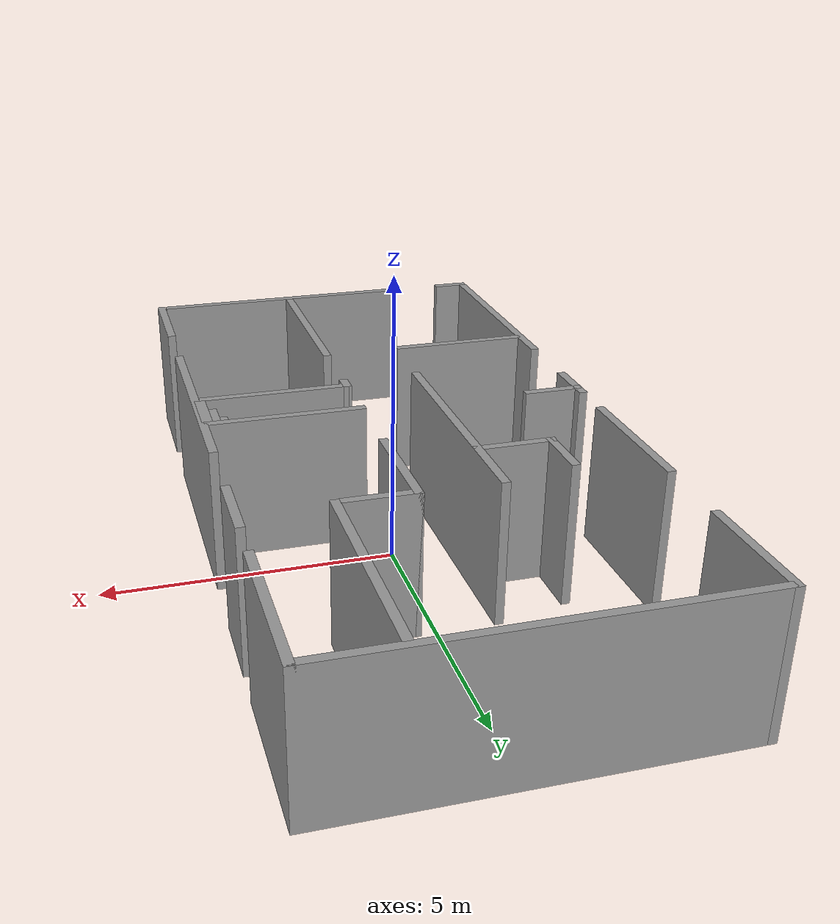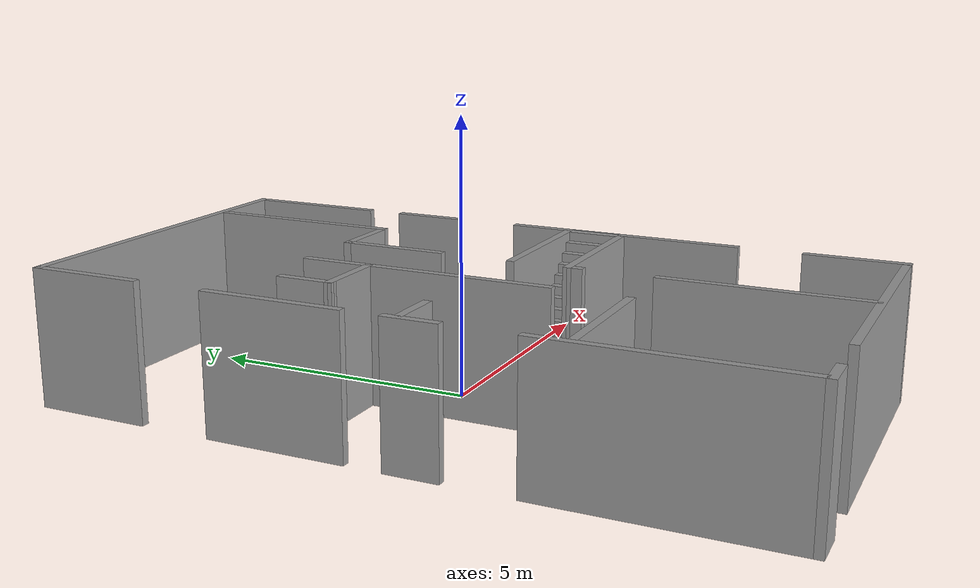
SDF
<?xml version='1.0'?>
<sdf version='1.7'>
<!--Walls and world model-->
  <model name='roboconvoy_3d_world'>
    <pose>-0.279316 -0.400822 0 0 -0 0</pose>
    <link name='Stairs_0'>
      <visual name='Stairs_0_Visual_0'>
        <pose>0.656384 -0.935334 0.083333 0 -0 1.5708</pose>
        <geometry>
          <box>
            <size>0.919916 0.183413 0.166667</size>
          </box>
        </geometry>
        <material>
          <script>
            <uri>file://media/materials/scripts/gazebo.material</uri>
            <name>Gazebo/Grey</name>
          </script>
          <ambient>1 1 1 1</ambient>
        </material>
        <meta>
          <layer>0</layer>
        </meta>
      </visual>
      <collision name='Stairs_0_Collision_0'>
        <geometry>
          <box>
            <size>0.919916 0.183413 0.166667</size>
          </box>
        </geometry>
        <pose>0.656384 -0.935334 0.083333 0 -0 1.5708</pose>
      </collision>
      <visual name='Stairs_0_Visual_1'>
        <pose>0.839797 -0.935334 0.25 0 -0 1.5708</pose>
        <geometry>
          <box>
            <size>0.919916 0.183413 0.166667</size>
          </box>
        </geometry>
        <material>
          <script>
            <uri>file://media/materials/scripts/gazebo.material</uri>
            <name>Gazebo/Grey</name>
          </script>
          <ambient>1 1 1 1</ambient>
        </material>
        <meta>
          <layer>0</layer>
        </meta>
      </visual>
      <collision name='Stairs_0_Collision_1'>
        <geometry>
          <box>
            <size>0.919916 0.183413 0.166667</size>
          </box>
        </geometry>
        <pose>0.839797 -0.935334 0.25 0 -0 1.5708</pose>
      </collision>
      <visual name='Stairs_0_Visual_2'>
        <pose>1.02321 -0.935334 0.416667 0 -0 1.5708</pose>
        <geometry>
          <box>
            <size>0.919916 0.183413 0.166667</size>
          </box>
        </geometry>
        <material>
          <script>
            <uri>file://media/materials/scripts/gazebo.material</uri>
            <name>Gazebo/Grey</name>
          </script>
          <ambient>1 1 1 1</ambient>
        </material>
        <meta>
          <layer>0</layer>
        </meta>
      </visual>
      <collision name='Stairs_0_Collision_2'>
        <geometry>
          <box>
            <size>0.919916 0.183413 0.166667</size>
          </box>
        </geometry>
        <pose>1.02321 -0.935334 0.416667 0 -0 1.5708</pose>
      </collision>
      <visual name='Stairs_0_Visual_3'>
        <pose>1.20662 -0.935334 0.583333 0 -0 1.5708</pose>
        <geometry>
          <box>
            <size>0.919916 0.183413 0.166667</size>
          </box>
        </geometry>
        <material>
          <script>
            <uri>file://media/materials/scripts/gazebo.material</uri>
            <name>Gazebo/Grey</name>
          </script>
          <ambient>1 1 1 1</ambient>
        </material>
        <meta>
          <layer>0</layer>
        </meta>
      </visual>
      <collision name='Stairs_0_Collision_3'>
        <geometry>
          <box>
            <size>0.919916 0.183413 0.166667</size>
          </box>
        </geometry>
        <pose>1.20662 -0.935334 0.583333 0 -0 1.5708</pose>
      </collision>
      <visual name='Stairs_0_Visual_4'>
        <pose>1.39004 -0.935334 0.75 0 -0 1.5708</pose>
        <geometry>
          <box>
            <size>0.919916 0.183413 0.166667</size>
          </box>
        </geometry>
        <material>
          <script>
            <uri>file://media/materials/scripts/gazebo.material</uri>
            <name>Gazebo/Grey</name>
          </script>
          <ambient>1 1 1 1</ambient>
        </material>
        <meta>
          <layer>0</layer>
        </meta>
      </visual>
      <collision name='Stairs_0_Collision_4'>
        <geometry>
          <box>
            <size>0.919916 0.183413 0.166667</size>
          </box>
        </geometry>
        <pose>1.39004 -0.935334 0.75 0 -0 1.5708</pose>
      </collision>
      <visual name='Stairs_0_Visual_5'>
        <pose>1.57345 -0.935334 0.916667 0 -0 1.5708</pose>
        <geometry>
          <box>
            <size>0.919916 0.183413 0.166667</size>
          </box>
        </geometry>
        <material>
          <script>
            <uri>file://media/materials/scripts/gazebo.material</uri>
            <name>Gazebo/Grey</name>
          </script>
          <ambient>1 1 1 1</ambient>
        </material>
        <meta>
          <layer>0</layer>
        </meta>
      </visual>
      <collision name='Stairs_0_Collision_5'>
        <geometry>
          <box>
            <size>0.919916 0.183413 0.166667</size>
          </box>
        </geometry>
        <pose>1.57345 -0.935334 0.916667 0 -0 1.5708</pose>
      </collision>
      <visual name='Stairs_0_Visual_6'>
        <pose>1.75686 -0.935334 1.08333 0 -0 1.5708</pose>
        <geometry>
          <box>
            <size>0.919916 0.183413 0.166667</size>
          </box>
        </geometry>
        <material>
          <script>
            <uri>file://media/materials/scripts/gazebo.material</uri>
            <name>Gazebo/Grey</name>
          </script>
          <ambient>1 1 1 1</ambient>
        </material>
        <meta>
          <layer>0</layer>
        </meta>
      </visual>
      <collision name='Stairs_0_Collision_6'>
        <geometry>
          <box>
            <size>0.919916 0.183413 0.166667</size>
          </box>
        </geometry>
        <pose>1.75686 -0.935334 1.08333 0 -0 1.5708</pose>
      </collision>
      <visual name='Stairs_0_Visual_7'>
        <pose>1.94028 -0.935334 1.25 0 -0 1.5708</pose>
        <geometry>
          <box>
            <size>0.919916 0.183413 0.166667</size>
          </box>
        </geometry>
        <material>
          <script>
            <uri>file://media/materials/scripts/gazebo.material</uri>
            <name>Gazebo/Grey</name>
          </script>
          <ambient>1 1 1 1</ambient>
        </material>
        <meta>
          <layer>0</layer>
        </meta>
      </visual>
      <collision name='Stairs_0_Collision_7'>
        <geometry>
          <box>
            <size>0.919916 0.183413 0.166667</size>
          </box>
        </geometry>
        <pose>1.94028 -0.935334 1.25 0 -0 1.5708</pose>
      </collision>
      <visual name='Stairs_0_Visual_8'>
        <pose>2.12369 -0.935334 1.41667 0 -0 1.5708</pose>
        <geometry>
          <box>
            <size>0.919916 0.183413 0.166667</size>
          </box>
        </geometry>
        <material>
          <script>
            <uri>file://media/materials/scripts/gazebo.material</uri>
            <name>Gazebo/Grey</name>
          </script>
          <ambient>1 1 1 1</ambient>
        </material>
        <meta>
          <layer>0</layer>
        </meta>
      </visual>
      <collision name='Stairs_0_Collision_8'>
        <geometry>
          <box>
            <size>0.919916 0.183413 0.166667</size>
          </box>
        </geometry>
        <pose>2.12369 -0.935334 1.41667 0 -0 1.5708</pose>
      </collision>
      <visual name='Stairs_0_Visual_9'>
        <pose>2.3071 -0.935334 1.58333 0 -0 1.5708</pose>
        <geometry>
          <box>
            <size>0.919916 0.183413 0.166667</size>
          </box>
        </geometry>
        <material>
          <script>
            <uri>file://media/materials/scripts/gazebo.material</uri>
            <name>Gazebo/Grey</name>
          </script>
          <ambient>1 1 1 1</ambient>
        </material>
        <meta>
          <layer>0</layer>
        </meta>
      </visual>
      <collision name='Stairs_0_Collision_9'>
        <geometry>
          <box>
            <size>0.919916 0.183413 0.166667</size>
          </box>
        </geometry>
        <pose>2.3071 -0.935334 1.58333 0 -0 1.5708</pose>
      </collision>
      <visual name='Stairs_0_Visual_10'>
        <pose>2.49052 -0.935334 1.75 0 -0 1.5708</pose>
        <geometry>
          <box>
            <size>0.919916 0.183413 0.166667</size>
          </box>
        </geometry>
        <material>
          <script>
            <uri>file://media/materials/scripts/gazebo.material</uri>
            <name>Gazebo/Grey</name>
          </script>
          <ambient>1 1 1 1</ambient>
        </material>
        <meta>
          <layer>0</layer>
        </meta>
      </visual>
      <collision name='Stairs_0_Collision_10'>
        <geometry>
          <box>
            <size>0.919916 0.183413 0.166667</size>
          </box>
        </geometry>
        <pose>2.49052 -0.935334 1.75 0 -0 1.5708</pose>
      </collision>
      <visual name='Stairs_0_Visual_11'>
        <pose>2.67393 -0.935334 1.91667 0 -0 1.5708</pose>
        <geometry>
          <box>
            <size>0.919916 0.183413 0.166667</size>
          </box>
        </geometry>
        <material>
          <script>
            <uri>file://media/materials/scripts/gazebo.material</uri>
            <name>Gazebo/Grey</name>
          </script>
          <ambient>1 1 1 1</ambient>
        </material>
        <meta>
          <layer>0</layer>
        </meta>
      </visual>
      <collision name='Stairs_0_Collision_11'>
        <geometry>
          <box>
            <size>0.919916 0.183413 0.166667</size>
          </box>
        </geometry>
        <pose>2.67393 -0.935334 1.91667 0 -0 1.5708</pose>
      </collision>
      <visual name='Stairs_0_Visual_12'>
        <pose>2.85734 -0.935334 2.08333 0 -0 1.5708</pose>
        <geometry>
          <box>
            <size>0.919916 0.183413 0.166667</size>
          </box>
        </geometry>
        <material>
          <script>
            <uri>file://media/materials/scripts/gazebo.material</uri>
            <name>Gazebo/Grey</name>
          </script>
          <ambient>1 1 1 1</ambient>
        </material>
        <meta>
          <layer>0</layer>
        </meta>
      </visual>
      <collision name='Stairs_0_Collision_12'>
        <geometry>
          <box>
            <size>0.919916 0.183413 0.166667</size>
          </box>
        </geometry>
        <pose>2.85734 -0.935334 2.08333 0 -0 1.5708</pose>
      </collision>
      <visual name='Stairs_0_Visual_13'>
        <pose>3.04075 -0.935334 2.25 0 -0 1.5708</pose>
        <geometry>
          <box>
            <size>0.919916 0.183413 0.166667</size>
          </box>
        </geometry>
        <material>
          <script>
            <uri>file://media/materials/scripts/gazebo.material</uri>
            <name>Gazebo/Grey</name>
          </script>
          <ambient>1 1 1 1</ambient>
        </material>
        <meta>
          <layer>0</layer>
        </meta>
      </visual>
      <collision name='Stairs_0_Collision_13'>
        <geometry>
          <box>
            <size>0.919916 0.183413 0.166667</size>
          </box>
        </geometry>
        <pose>3.04075 -0.935334 2.25 0 -0 1.5708</pose>
      </collision>
      <visual name='Stairs_0_Visual_14'>
        <pose>3.22417 -0.935334 2.41667 0 -0 1.5708</pose>
        <geometry>
          <box>
            <size>0.919916 0.183413 0.166667</size>
          </box>
        </geometry>
        <material>
          <script>
            <uri>file://media/materials/scripts/gazebo.material</uri>
            <name>Gazebo/Grey</name>
          </script>
          <ambient>1 1 1 1</ambient>
        </material>
        <meta>
          <layer>0</layer>
        </meta>
      </visual>
      <collision name='Stairs_0_Collision_14'>
        <geometry>
          <box>
            <size>0.919916 0.183413 0.166667</size>
          </box>
        </geometry>
        <pose>3.22417 -0.935334 2.41667 0 -0 1.5708</pose>
      </collision>
    </link>
    <link name='Wall_101'>
      <collision name='Wall_101_Collision'>
        <geometry>
          <box>
            <size>5 0.15 2.5</size>
          </box>
        </geometry>
        <pose>0 0 1.25 0 -0 0</pose>
      </collision>
      <visual name='Wall_101_Visual'>
        <pose>0 0 1.25 0 -0 0</pose>
        <geometry>
          <box>
            <size>5 0.15 2.5</size>
          </box>
        </geometry>
        <material>
          <script>
            <uri>file://media/materials/scripts/gazebo.material</uri>
            <name>Gazebo/Grey</name>
          </script>
          <ambient>1 1 1 1</ambient>
        </material>
        <meta>
          <layer>0</layer>
        </meta>
      </visual>
      <pose>0.706847 -6.60645 0 0 -0 0</pose>
    </link>
    <link name='Wall_104'>
      <collision name='Wall_104_Collision'>
        <geometry>
          <box>
            <size>3.64078 0.15 2.5</size>
          </box>
        </geometry>
        <pose>0 0 1.25 0 -0 0</pose>
      </collision>
      <visual name='Wall_104_Visual'>
        <pose>0 0 1.25 0 -0 0</pose>
        <geometry>
          <box>
            <size>3.64078 0.15 2.5</size>
          </box>
        </geometry>
        <material>
          <script>
            <uri>file://media/materials/scripts/gazebo.material</uri>
            <name>Gazebo/Grey</name>
          </script>
          <ambient>1 1 1 1</ambient>
        </material>
        <meta>
          <layer>0</layer>
        </meta>
      </visual>
      <pose>0.600602 -4.80203 0 0 -0 -1.5708</pose>
    </link>
    <link name='Wall_106'>
      <collision name='Wall_106_Collision'>
        <geometry>
          <box>
            <size>1.85325 0.15 2.5</size>
          </box>
        </geometry>
        <pose>0 0 1.25 0 -0 0</pose>
      </collision>
      <visual name='Wall_106_Visual'>
        <pose>0 0 1.25 0 -0 0</pose>
        <geometry>
          <box>
            <size>1.85325 0.15 2.5</size>
          </box>
        </geometry>
        <material>
          <script>
            <uri>file://media/materials/scripts/gazebo.material</uri>
            <name>Gazebo/Grey</name>
          </script>
          <ambient>1 1 1 1</ambient>
        </material>
        <meta>
          <layer>0</layer>
        </meta>
      </visual>
      <pose>3.29879 -5.75483 0 0 -0 -1.5708</pose>
    </link>
    <link name='Wall_110'>
      <collision name='Wall_110_Collision'>
        <geometry>
          <box>
            <size>2.75 0.15 2.5</size>
          </box>
        </geometry>
        <pose>0 0 1.25 0 -0 0</pose>
      </collision>
      <visual name='Wall_110_Visual'>
        <pose>0 0 1.25 0 -0 0</pose>
        <geometry>
          <box>
            <size>2.75 0.15 2.5</size>
          </box>
        </geometry>
        <material>
          <script>
            <uri>file://media/materials/scripts/gazebo.material</uri>
            <name>Gazebo/Grey</name>
          </script>
          <ambient>1 1 1 1</ambient>
        </material>
        <meta>
          <layer>0</layer>
        </meta>
      </visual>
      <pose>1.90905 -0.403047 0 0 -0 0</pose>
    </link>
    <link name='Wall_114'>
      <collision name='Wall_114_Collision'>
        <geometry>
          <box>
            <size>2.69507 0.15 2.5</size>
          </box>
        </geometry>
        <pose>0 0 1.25 0 -0 0</pose>
      </collision>
      <visual name='Wall_114_Visual'>
        <pose>0 0 1.25 0 -0 0</pose>
        <geometry>
          <box>
            <size>2.69507 0.15 2.5</size>
          </box>
        </geometry>
        <material>
          <script>
            <uri>file://media/materials/scripts/gazebo.material</uri>
            <name>Gazebo/Grey</name>
          </script>
          <ambient>1 1 1 1</ambient>
        </material>
        <meta>
          <layer>0</layer>
        </meta>
      </visual>
      <pose>1.87683 -1.45569 0 0 -0 3.14039</pose>
    </link>
    <link name='Wall_116'>
      <collision name='Wall_116_Collision'>
        <geometry>
          <box>
            <size>4.4151 0.15 2.5</size>
          </box>
        </geometry>
        <pose>0 0 1.25 0 -0 0</pose>
      </collision>
      <visual name='Wall_116_Visual'>
        <pose>0 0 1.25 0 -0 0</pose>
        <geometry>
          <box>
            <size>4.4151 0.15 2.5</size>
          </box>
        </geometry>
        <material>
          <script>
            <uri>file://media/materials/scripts/gazebo.material</uri>
            <name>Gazebo/Grey</name>
          </script>
          <ambient>1 1 1 1</ambient>
        </material>
        <meta>
          <layer>0</layer>
        </meta>
      </visual>
      <pose>3.30109 -1.47463 0 0 -0 -1.57087</pose>
    </link>
    <link name='Wall_122'>
      <collision name='Wall_122_Collision'>
        <geometry>
          <box>
            <size>0.352536 0.15 2.5</size>
          </box>
        </geometry>
        <pose>0 0 1.25 0 -0 0</pose>
      </collision>
      <visual name='Wall_122_Visual'>
        <pose>0 0 1.25 0 -0 0</pose>
        <geometry>
          <box>
            <size>0.352536 0.15 2.5</size>
          </box>
        </geometry>
        <material>
          <script>
            <uri>file://media/materials/scripts/gazebo.material</uri>
            <name>Gazebo/Grey</name>
          </script>
          <ambient>1 1 1 1</ambient>
        </material>
        <meta>
          <layer>0</layer>
        </meta>
      </visual>
      <pose>0.604292 -1.5554 0 0 -0 -1.5708</pose>
    </link>
    <link name='Wall_124'>
      <collision name='Wall_124_Collision'>
        <geometry>
          <box>
            <size>1.34225 0.15 2.5</size>
          </box>
        </geometry>
        <pose>0 0 1.25 0 -0 0</pose>
      </collision>
      <visual name='Wall_124_Visual'>
        <pose>0 0 1.25 0 -0 0</pose>
        <geometry>
          <box>
            <size>1.34225 0.15 2.5</size>
          </box>
        </geometry>
        <material>
          <script>
            <uri>file://media/materials/scripts/gazebo.material</uri>
            <name>Gazebo/Grey</name>
          </script>
          <ambient>1 1 1 1</ambient>
        </material>
        <meta>
          <layer>0</layer>
        </meta>
      </visual>
      <pose>3.30316 2.60135 0 0 -0 -1.5708</pose>
    </link>
    <link name='Wall_126'>
      <collision name='Wall_126_Collision'>
        <geometry>
          <box>
            <size>2.5 0.15 2.5</size>
          </box>
        </geometry>
        <pose>0 0 1.25 0 -0 0</pose>
      </collision>
      <visual name='Wall_126_Visual'>
        <pose>0 0 1.25 0 -0 0</pose>
        <geometry>
          <box>
            <size>2.5 0.15 2.5</size>
          </box>
        </geometry>
        <material>
          <script>
            <uri>file://media/materials/scripts/gazebo.material</uri>
            <name>Gazebo/Grey</name>
          </script>
          <ambient>1 1 1 1</ambient>
        </material>
        <meta>
          <layer>0</layer>
        </meta>
      </visual>
      <pose>-2.0281 -3.05022 0 0 -0 3.14159</pose>
    </link>
    <link name='Wall_64'>
      <collision name='Wall_64_Collision'>
        <geometry>
          <box>
            <size>2.14585 0.15 2.5</size>
          </box>
        </geometry>
        <pose>0 0 1.25 0 -0 0</pose>
      </collision>
      <visual name='Wall_64_Visual'>
        <pose>0 0 1.25 0 -0 0</pose>
        <geometry>
          <box>
            <size>2.14585 0.15 2.5</size>
          </box>
        </geometry>
        <material>
          <script>
            <uri>file://media/materials/scripts/gazebo.material</uri>
            <name>Gazebo/Grey</name>
          </script>
          <ambient>1 1 1 1</ambient>
        </material>
        <meta>
          <layer>0</layer>
        </meta>
      </visual>
      <pose>-3.29549 5.60853 0 0 -0 1.5708</pose>
    </link>
    <link name='Wall_66'>
      <collision name='Wall_66_Collision'>
        <geometry>
          <box>
            <size>6.75 0.15 2.5</size>
          </box>
        </geometry>
        <pose>0 0 1.25 0 -0 0</pose>
      </collision>
      <visual name='Wall_66_Visual'>
        <pose>0 0 1.25 0 -0 0</pose>
        <geometry>
          <box>
            <size>6.75 0.15 2.5</size>
          </box>
        </geometry>
        <material>
          <script>
            <uri>file://media/materials/scripts/gazebo.material</uri>
            <name>Gazebo/Grey</name>
          </script>
          <ambient>1 1 1 1</ambient>
        </material>
        <meta>
          <layer>0</layer>
        </meta>
      </visual>
      <pose>0.004509 6.60645 0 0 -0 0</pose>
    </link>
    <link name='Wall_67'>
      <collision name='Wall_67_Collision'>
        <geometry>
          <box>
            <size>2.75 0.15 2.5</size>
          </box>
        </geometry>
        <pose>0 0 1.25 0 -0 0</pose>
      </collision>
      <visual name='Wall_67_Visual'>
        <pose>0 0 1.25 0 -0 0</pose>
        <geometry>
          <box>
            <size>2.75 0.15 2.5</size>
          </box>
        </geometry>
        <material>
          <script>
            <uri>file://media/materials/scripts/gazebo.material</uri>
            <name>Gazebo/Grey</name>
          </script>
          <ambient>1 1 1 1</ambient>
        </material>
        <meta>
          <layer>0</layer>
        </meta>
      </visual>
      <pose>3.30451 5.30645 0 0 -0 -1.5708</pose>
    </link>
    <link name='Wall_73'>
      <collision name='Wall_73_Collision'>
        <geometry>
          <box>
            <size>3.75 0.15 2.5</size>
          </box>
        </geometry>
        <pose>0 0 1.25 0 -0 0</pose>
      </collision>
      <visual name='Wall_73_Visual'>
        <pose>0 0 1.25 0 -0 0</pose>
        <geometry>
          <box>
            <size>3.75 0.15 2.5</size>
          </box>
        </geometry>
        <material>
          <script>
            <uri>file://media/materials/scripts/gazebo.material</uri>
            <name>Gazebo/Grey</name>
          </script>
          <ambient>1 1 1 1</ambient>
        </material>
        <meta>
          <layer>0</layer>
        </meta>
      </visual>
      <pose>1.85159 4.67038 0 0 -0 1.5708</pose>
    </link>
    <link name='Wall_75'>
      <collision name='Wall_75_Collision'>
        <geometry>
          <box>
            <size>1.25 0.15 2.5</size>
          </box>
        </geometry>
        <pose>0 0 1.25 0 -0 0</pose>
      </collision>
      <visual name='Wall_75_Visual'>
        <pose>0 0 1.25 0 -0 0</pose>
        <geometry>
          <box>
            <size>1.25 0.15 2.5</size>
          </box>
        </geometry>
        <material>
          <script>
            <uri>file://media/materials/scripts/gazebo.material</uri>
            <name>Gazebo/Grey</name>
          </script>
          <ambient>1 1 1 1</ambient>
        </material>
        <meta>
          <layer>0</layer>
        </meta>
      </visual>
      <pose>1.15131 2.85312 0 0 -0 0</pose>
    </link>
    <link name='Wall_77'>
      <collision name='Wall_77_Collision'>
        <geometry>
          <box>
            <size>2 0.15 2.5</size>
          </box>
        </geometry>
        <pose>0 0 1.25 0 -0 0</pose>
      </collision>
      <visual name='Wall_77_Visual'>
        <pose>0 0 1.25 0 -0 0</pose>
        <geometry>
          <box>
            <size>2 0.15 2.5</size>
          </box>
        </geometry>
        <material>
          <script>
            <uri>file://media/materials/scripts/gazebo.material</uri>
            <name>Gazebo/Grey</name>
          </script>
          <ambient>1 1 1 1</ambient>
        </material>
        <meta>
          <layer>0</layer>
        </meta>
      </visual>
      <pose>0.601314 1.92812 0 0 -0 -1.5708</pose>
    </link>
    <link name='Wall_79'>
      <collision name='Wall_79_Collision'>
        <geometry>
          <box>
            <size>1.06091 0.15 2.5</size>
          </box>
        </geometry>
        <pose>0 0 1.25 0 -0 0</pose>
      </collision>
      <visual name='Wall_79_Visual'>
        <pose>0 0 1.25 0 -0 0</pose>
        <geometry>
          <box>
            <size>1.06091 0.15 2.5</size>
          </box>
        </geometry>
        <material>
          <script>
            <uri>file://media/materials/scripts/gazebo.material</uri>
            <name>Gazebo/Grey</name>
          </script>
          <ambient>1 1 1 1</ambient>
        </material>
        <meta>
          <layer>0</layer>
        </meta>
      </visual>
      <pose>-2.00084 2.11253 0 0 -0 -1.5708</pose>
    </link>
    <link name='Wall_82'>
      <collision name='Wall_82_Collision'>
        <geometry>
          <box>
            <size>1.39502 0.15 2.5</size>
          </box>
        </geometry>
        <pose>0 0 1.25 0 -0 0</pose>
      </collision>
      <visual name='Wall_82_Visual'>
        <pose>0 0 1.25 0 -0 0</pose>
        <geometry>
          <box>
            <size>1.39502 0.15 2.5</size>
          </box>
        </geometry>
        <material>
          <script>
            <uri>file://media/materials/scripts/gazebo.material</uri>
            <name>Gazebo/Grey</name>
          </script>
          <ambient>1 1 1 1</ambient>
        </material>
        <meta>
          <layer>0</layer>
        </meta>
      </visual>
      <pose>-1.37833 1.65865 0 0 -0 -3.13906</pose>
    </link>
    <link name='Wall_85'>
      <collision name='Wall_85_Collision'>
        <geometry>
          <box>
            <size>4.6583 0.15 2.5</size>
          </box>
        </geometry>
        <pose>0 0 1.25 0 -0 0</pose>
      </collision>
      <visual name='Wall_85_Visual'>
        <pose>0 0 1.25 0 -0 0</pose>
        <geometry>
          <box>
            <size>4.6583 0.15 2.5</size>
          </box>
        </geometry>
        <material>
          <script>
            <uri>file://media/materials/scripts/gazebo.material</uri>
            <name>Gazebo/Grey</name>
          </script>
          <ambient>1 1 1 1</ambient>
        </material>
        <meta>
          <layer>0</layer>
        </meta>
      </visual>
      <pose>-0.750069 0.59827 0 0 -0 -1.57033</pose>
    </link>
    <link name='Wall_87'>
      <collision name='Wall_87_Collision'>
        <geometry>
          <box>
            <size>2.59262 0.15 2.5</size>
          </box>
        </geometry>
        <pose>0 0 1.25 0 -0 0</pose>
      </collision>
      <visual name='Wall_87_Visual'>
        <pose>0 0 1.25 0 -0 0</pose>
        <geometry>
          <box>
            <size>2.59262 0.15 2.5</size>
          </box>
        </geometry>
        <material>
          <script>
            <uri>file://media/materials/scripts/gazebo.material</uri>
            <name>Gazebo/Grey</name>
          </script>
          <ambient>1 1 1 1</ambient>
        </material>
        <meta>
          <layer>0</layer>
        </meta>
      </visual>
      <pose>-3.30398 1.93126 0 0 -0 -1.57039</pose>
    </link>
    <link name='Wall_89'>
      <collision name='Wall_89_Collision'>
        <geometry>
          <box>
            <size>0.992615 0.15 2.5</size>
          </box>
        </geometry>
        <pose>0 0 1.25 0 -0 0</pose>
      </collision>
      <visual name='Wall_89_Visual'>
        <pose>0 0 1.25 0 -0 0</pose>
        <geometry>
          <box>
            <size>0.992615 0.15 2.5</size>
          </box>
        </geometry>
        <material>
          <script>
            <uri>file://media/materials/scripts/gazebo.material</uri>
            <name>Gazebo/Grey</name>
          </script>
          <ambient>1 1 1 1</ambient>
        </material>
        <meta>
          <layer>0</layer>
        </meta>
      </visual>
      <pose>-3.30348 -0.53031 0 0 -0 -1.5708</pose>
    </link>
    <link name='Wall_95'>
      <collision name='Wall_95_Collision'>
        <geometry>
          <box>
            <size>1.05551 0.15 2.5</size>
          </box>
        </geometry>
        <pose>0 0 1.25 0 -0 0</pose>
      </collision>
      <visual name='Wall_95_Visual'>
        <pose>0 0 1.25 0 -0 0</pose>
        <geometry>
          <box>
            <size>1.05551 0.15 2.5</size>
          </box>
        </geometry>
        <material>
          <script>
            <uri>file://media/materials/scripts/gazebo.material</uri>
            <name>Gazebo/Grey</name>
          </script>
          <ambient>1 1 1 1</ambient>
        </material>
        <meta>
          <layer>0</layer>
        </meta>
      </visual>
      <pose>-2.84235 -0.299744 0 0 -0 -0.00463</pose>
    </link>
    <link name='Wall_97'>
      <collision name='Wall_97_Collision'>
        <geometry>
          <box>
            <size>4.29004 0.15 2.5</size>
          </box>
        </geometry>
        <pose>0 0 1.25 0 -0 0</pose>
      </collision>
      <visual name='Wall_97_Visual'>
        <pose>0 0 1.25 0 -0 0</pose>
        <geometry>
          <box>
            <size>4.29004 0.15 2.5</size>
          </box>
        </geometry>
        <material>
          <script>
            <uri>file://media/materials/scripts/gazebo.material</uri>
            <name>Gazebo/Grey</name>
          </script>
          <ambient>1 1 1 1</ambient>
        </material>
        <meta>
          <layer>0</layer>
        </meta>
      </visual>
      <pose>-3.30334 -4.42682 0 0 -0 -1.5708</pose>
    </link>
    <link name='Wall_99'>
      <collision name='Wall_99_Collision'>
        <geometry>
          <box>
            <size>0.681273 0.15 2.5</size>
          </box>
        </geometry>
        <pose>0 0 1.25 0 -0 0</pose>
      </collision>
      <visual name='Wall_99_Visual'>
        <pose>0 0 1.25 0 -0 0</pose>
        <geometry>
          <box>
            <size>0.681273 0.15 2.5</size>
          </box>
        </geometry>
        <material>
          <script>
            <uri>file://media/materials/scripts/gazebo.material</uri>
            <name>Gazebo/Grey</name>
          </script>
          <ambient>1 1 1 1</ambient>
        </material>
        <meta>
          <layer>0</layer>
        </meta>
      </visual>
      <pose>-3.03774 -6.60645 0 0 -0 3.14159</pose>
    </link>
    <static>1</static>
  </model>

</sdf>
